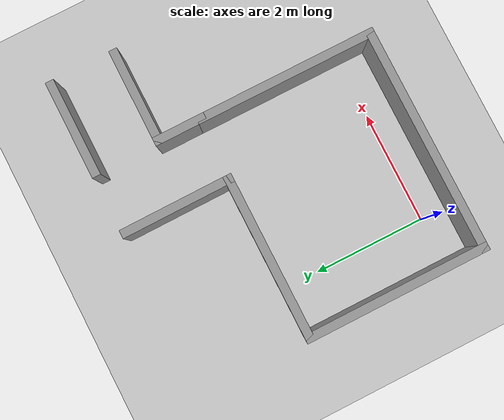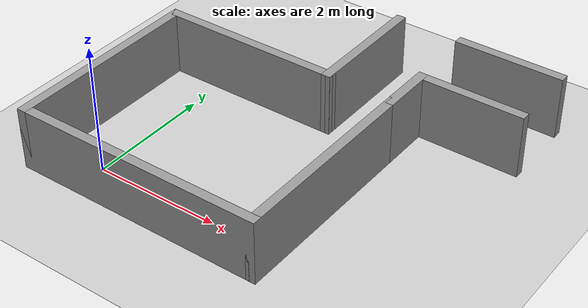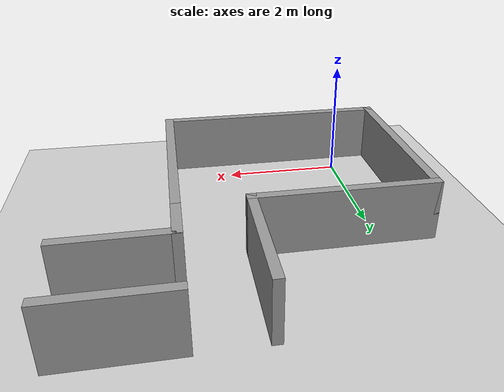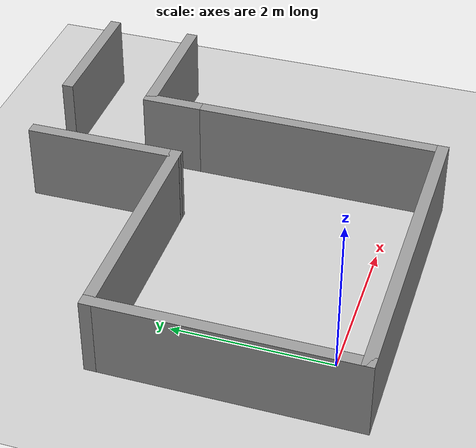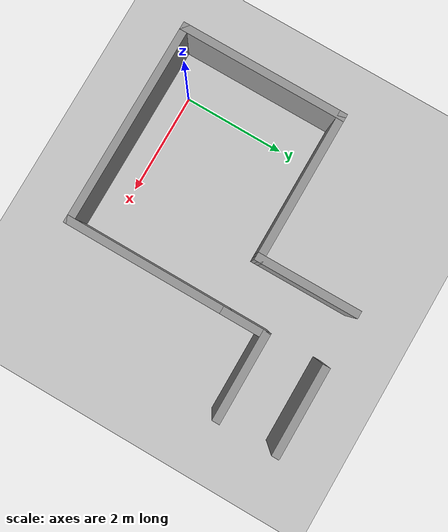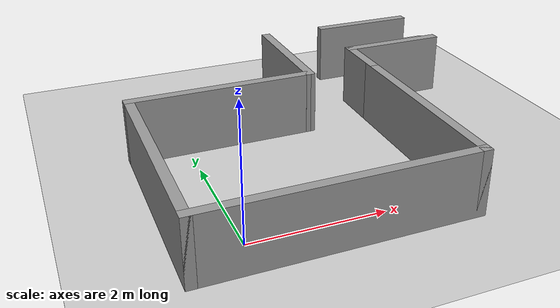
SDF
<sdf version="1.7">
 <world name="default">
  <light name="sun" type="directional">
   <pose>0 0 10 0 -0 0</pose>
   <diffuse>0.8 0.8 0.8 1</diffuse>
   <specular>0.2 0.2 0.2 1</specular>
   <attenuation>
    <range>1000</range>
    <constant>0.9</constant>
    <linear>0.01</linear>
    <quadratic>0.001</quadratic>
   </attenuation>
   <direction>-0.5 0.1 -0.9</direction>
   <spot><inner_angle>0</inner_angle><outer_angle>0</outer_angle><falloff>0</falloff></spot>
  </light>
  <model name="ground_plane">
   <static>1</static>
   <link name="link">
    <collision name="collision">
     <geometry><plane><normal>0 0 1</normal><size>100 100</size></plane></geometry>
     <surface>
      <contact><collide_bitmask>65535</collide_bitmask></contact>
      <friction><ode><mu>100</mu><mu2>50</mu2></ode></friction>
     </surface>
    </collision>
    <visual name="visual">
     <cast_shadows>0</cast_shadows>
     <geometry><plane><normal>0 0 1</normal><size>100 100</size></plane></geometry>
     <material>
      <script><uri>file://media/materials/scripts/gazebo.material</uri><name>Gazebo/Grey</name></script>
     </material>
    </visual>
   </link>
  </model>
  <gravity>0 0 -9.8</gravity>
  <magnetic_field>6e-06 2.3e-05 -4.2e-05</magnetic_field>
  <atmosphere type="adiabatic"/>
  <physics type="ode">
   <max_step_size>0.001</max_step_size>
   <real_time_factor>1</real_time_factor>
   <real_time_update_rate>1000</real_time_update_rate>
  </physics>
  <scene><ambient>0.4 0.4 0.4 1</ambient><background>0.7 0.7 0.7 1</background><shadows>1</shadows></scene>
  <spherical_coordinates>
   <surface_model>EARTH_WGS84</surface_model>
   <latitude_deg>0</latitude_deg>
   <longitude_deg>0</longitude_deg>
   <elevation>0</elevation>
   <heading_deg>0</heading_deg>
  </spherical_coordinates>
  <model name="exam_world_end">
   <pose>1.92948 2.06219 0 0 -0 0</pose>
   <link name="Wall_0">
    <collision name="Wall_0_Collision">
     <geometry><box><size>3.3 0.15 1</size></box></geometry>
     <pose>0 0 0.5 0 -0 0</pose>
    </collision>
    <visual name="Wall_0_Visual">
     <pose>0 0 0.5 0 -0 0</pose>
     <geometry><box><size>3.3 0.15 1</size></box></geometry>
     <material>
      <script><uri>file://media/materials/scripts/gazebo.material</uri><name>Gazebo/Grey</name></script>
      <ambient>1 1 1 1</ambient>
     </material>
     <meta><layer>0</layer></meta>
    </visual>
    <pose>-2.77 -1.0075 0 0 -0 -1.5708</pose>
   </link>
   <link name="Wall_1">
    <collision name="Wall_1_Collision">
     <geometry><box><size>4.09 0.15 1</size></box></geometry>
     <pose>0 0 0.5 0 -0 0</pose>
    </collision>
    <visual name="Wall_1_Visual">
     <pose>0 0 0.5 0 -0 0</pose>
     <geometry><box><size>4.09 0.15 1</size></box></geometry>
     <material>
      <script><uri>file://media/materials/scripts/gazebo.material</uri><name>Gazebo/Grey</name></script>
      <ambient>1 1 1 1</ambient>
     </material>
     <meta><layer>0</layer></meta>
    </visual>
    <pose>-0.8 -2.5825 0 0 -0 0</pose>
   </link>
   <link name="Wall_10">
    <collision name="Wall_10_Collision">
     <geometry><box><size>0.930064 0.15 1</size></box></geometry>
     <pose>0 0 0.5 0 -0 0</pose>
    </collision>
    <visual name="Wall_10_Visual">
     <pose>0 0 0.5 0 -0 0</pose>
     <geometry><box><size>0.930064 0.15 1</size></box></geometry>
     <material>
      <script><uri>file://media/materials/scripts/gazebo.material</uri><name>Gazebo/Grey</name></script>
      <ambient>1 1 1 1</ambient>
     </material>
     <meta><layer>0</layer></meta>
    </visual>
    <pose>1.17 0.9075 0 0 -0 1.5708</pose>
   </link>
   <link name="Wall_13">
    <collision name="Wall_13_Collision">
     <geometry><box><size>1.75 0.15 1</size></box></geometry>
     <pose>0 0 0.5 0 -0 0</pose>
    </collision>
    <visual name="Wall_13_Visual">
     <pose>0 0 0.5 0 -0 0</pose>
     <geometry><box><size>1.75 0.15 1</size></box></geometry>
     <material>
      <script><uri>file://media/materials/scripts/gazebo.material</uri><name>Gazebo/Grey</name></script>
      <ambient>1 1 1 1</ambient>
     </material>
     <meta><layer>0</layer></meta>
    </visual>
    <pose>1.97 2.4475 0 0 -0 0</pose>
   </link>
   <link name="Wall_15">
    <collision name="Wall_15_Collision">
     <geometry><box><size>1.75 0.15 1</size></box></geometry>
     <pose>0 0 0.5 0 -0 0</pose>
    </collision>
    <visual name="Wall_15_Visual">
     <pose>0 0 0.5 0 -0 0</pose>
     <geometry><box><size>1.75 0.15 1</size></box></geometry>
     <material>
      <script><uri>file://media/materials/scripts/gazebo.material</uri><name>Gazebo/Grey</name></script>
      <ambient>1 1 1 1</ambient>
     </material>
     <meta><layer>0</layer></meta>
    </visual>
    <pose>1.97 1.2975 0 0 -0 0</pose>
   </link>
   <link name="Wall_3">
    <collision name="Wall_3_Collision">
     <geometry><box><size>3 0.15 1</size></box></geometry>
     <pose>0 0 0.5 0 -0 0</pose>
    </collision>
    <visual name="Wall_3_Visual">
     <pose>0 0 0.5 0 -0 0</pose>
     <geometry><box><size>3 0.15 1</size></box></geometry>
     <material>
      <script><uri>file://media/materials/scripts/gazebo.material</uri><name>Gazebo/Grey</name></script>
      <ambient>1 1 1 1</ambient>
     </material>
     <meta><layer>0</layer></meta>
    </visual>
    <pose>-1.345 0.5675 0 0 -0 0</pose>
   </link>
   <link name="Wall_5">
    <collision name="Wall_5_Collision">
     <geometry><box><size>3.25 0.15 1</size></box></geometry>
     <pose>0 0 0.5 0 -0 0</pose>
    </collision>
    <visual name="Wall_5_Visual">
     <pose>0 0 0.5 0 -0 0</pose>
     <geometry><box><size>3.25 0.15 1</size></box></geometry>
     <material>
      <script><uri>file://media/materials/scripts/gazebo.material</uri><name>Gazebo/Grey</name></script>
      <ambient>1 1 1 1</ambient>
     </material>
     <meta><layer>0</layer></meta>
    </visual>
    <pose>1.17 -1.0325 0 0 -0 1.5708</pose>
   </link>
   <link name="Wall_7">
    <collision name="Wall_7_Collision">
     <geometry><box><size>2.02003 0.15 1</size></box></geometry>
     <pose>0 0 0.5 0 -0 0</pose>
    </collision>
    <visual name="Wall_7_Visual">
     <pose>0 0 0.5 0 -0 0</pose>
     <geometry><box><size>2.02003 0.15 1</size></box></geometry>
     <material>
      <script><uri>file://media/materials/scripts/gazebo.material</uri><name>Gazebo/Grey</name></script>
      <ambient>1 1 1 1</ambient>
     </material>
     <meta><layer>0</layer></meta>
    </visual>
    <pose>0.075 1.5025 0 0 -0 1.57614</pose>
   </link>
   <static>1</static>
  </model>
  <light name="user_directional_light_0" type="directional">
   <pose>1.13157 1.06396 1 0 -0 0</pose>
   <diffuse>0.5 0.5 0.5 1</diffuse>
   <specular>0.1 0.1 0.1 1</specular>
   <direction>0.1 0.1 -0.9</direction>
   <attenuation>
    <range>20</range>
    <constant>0.5</constant>
    <linear>0.01</linear>
    <quadratic>0.001</quadratic>
   </attenuation>
  </light>
  <light name="user_directional_light_1" type="directional">
   <pose>-0.074174 0.735831 1 0 -0 0</pose>
   <diffuse>0.5 0.5 0.5 1</diffuse>
   <specular>0.1 0.1 0.1 1</specular>
   <direction>0.1 0.1 -0.9</direction>
   <attenuation>
    <range>20</range>
    <constant>0.5</constant>
    <linear>0.01</linear>
    <quadratic>0.001</quadratic>
   </attenuation>
  </light>
  <light name="user_directional_light_3" type="directional">
   <pose>2.3996 2.29513 1 0 -0 0</pose>
   <diffuse>0.5 0.5 0.5 1</diffuse>
   <specular>0.1 0.1 0.1 1</specular>
   <direction>0.1 0.1 -0.9</direction>
   <attenuation>
    <range>20</range>
    <constant>0.5</constant>
    <linear>0.01</linear>
    <quadratic>0.001</quadratic>
   </attenuation>
  </light>
 </world>
</sdf>
